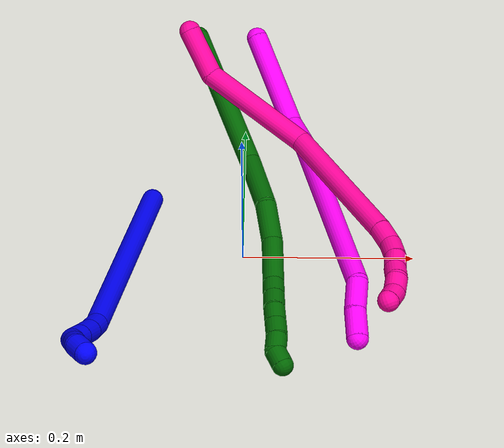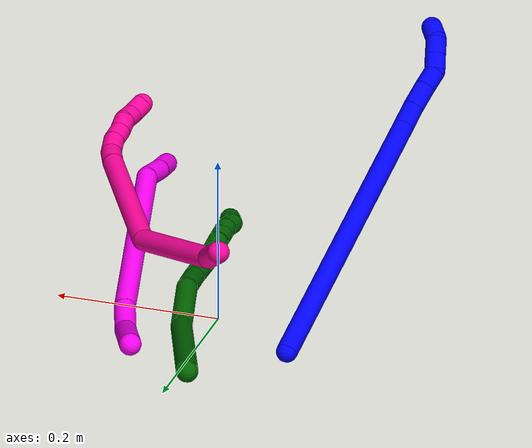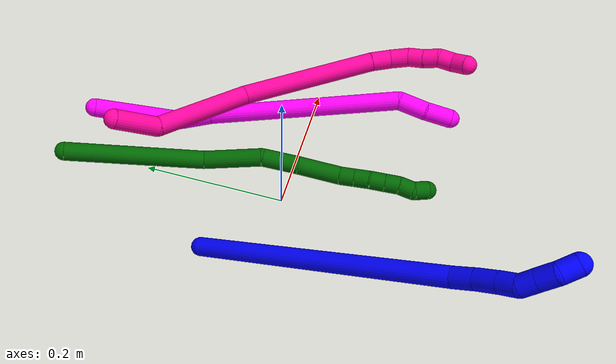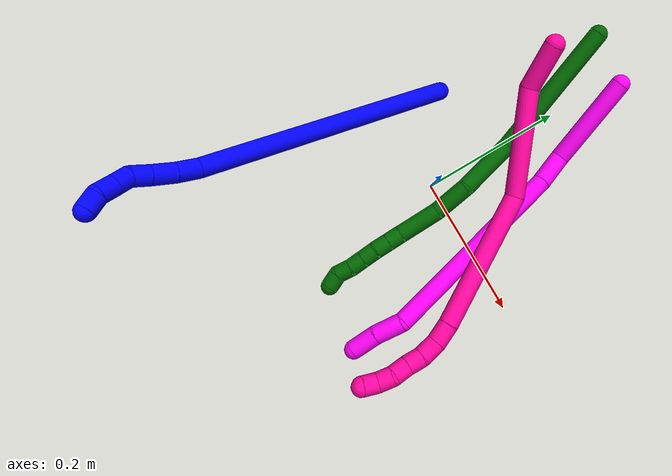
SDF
<sdf version="1.7">
 <world name="default">
  <model name="1">
   <static>0</static>
   <link name="1">
    <collision name="collision-cylinder-e_1_1_4">
     <pose>-0.001819 -0.042072 0.172717 0.238934 -0.010231 -0.001228</pose>
     <geometry><cylinder><radius>0.0125</radius><length>0.355554</length></cylinder></geometry>
     <surface>
      <friction><ode><mu>1.16</mu><mu2>1.16</mu2><slip1>0</slip1><slip2>0</slip2></ode></friction>
      <contact><ode><kp>1e+06</kp><kd>1</kd><max_vel>0</max_vel><min_depth>0.001</min_depth></ode></contact>
     </surface>
    </collision>
    <visual name="visual-cylinder-e_1_1_4">
     <pose>-0.001819 -0.042072 0.172717 0.238934 -0.010231 -0.001228</pose>
     <geometry><cylinder><radius>0.0125</radius><length>0.355554</length></cylinder></geometry>
     <material><ambient>0 0 1 1</ambient></material>
    </visual>
    <collision name="collision-cylinder-e_2_4_5">
     <pose>-0.00642 -0.086586 0.35948 0.172169 -0.192775 -0.016687</pose>
     <geometry><cylinder><radius>0.0125</radius><length>0.02905</length></cylinder></geometry>
     <surface>
      <friction><ode><mu>1.16</mu><mu2>1.16</mu2><slip1>0</slip1><slip2>0</slip2></ode></friction>
      <contact><ode><kp>1e+06</kp><kd>1</kd><max_vel>0</max_vel><min_depth>0.001</min_depth></ode></contact>
     </surface>
    </collision>
    <visual name="visual-cylinder-e_2_4_5">
     <pose>-0.00642 -0.086586 0.35948 0.172169 -0.192775 -0.016687</pose>
     <geometry><cylinder><radius>0.0125</radius><length>0.02905</length></cylinder></geometry>
     <material><ambient>0 0 1 1</ambient></material>
    </visual>
    <collision name="collision-cylinder-e_3_5_6">
     <pose>-0.013316 -0.091831 0.387499 0.197934 -0.280907 -0.028075</pose>
     <geometry><cylinder><radius>0.0125</radius><length>0.029668</length></cylinder></geometry>
     <surface>
      <friction><ode><mu>1.16</mu><mu2>1.16</mu2><slip1>0</slip1><slip2>0</slip2></ode></friction>
      <contact><ode><kp>1e+06</kp><kd>1</kd><max_vel>0</max_vel><min_depth>0.001</min_depth></ode></contact>
     </surface>
    </collision>
    <visual name="visual-cylinder-e_3_5_6">
     <pose>-0.013316 -0.091831 0.387499 0.197934 -0.280907 -0.028075</pose>
     <geometry><cylinder><radius>0.0125</radius><length>0.029668</length></cylinder></geometry>
     <material><ambient>0 0 1 1</ambient></material>
    </visual>
    <collision name="collision-cylinder-e_4_6_7">
     <pose>-0.020869 -0.097108 0.411978 0.23137 -0.308626 -0.036147</pose>
     <geometry><cylinder><radius>0.0125</radius><length>0.022655</length></cylinder></geometry>
     <surface>
      <friction><ode><mu>1.16</mu><mu2>1.16</mu2><slip1>0</slip1><slip2>0</slip2></ode></friction>
      <contact><ode><kp>1e+06</kp><kd>1</kd><max_vel>0</max_vel><min_depth>0.001</min_depth></ode></contact>
     </surface>
    </collision>
    <visual name="visual-cylinder-e_4_6_7">
     <pose>-0.020869 -0.097108 0.411978 0.23137 -0.308626 -0.036147</pose>
     <geometry><cylinder><radius>0.0125</radius><length>0.022655</length></cylinder></geometry>
     <material><ambient>0 0 1 1</ambient></material>
    </visual>
    <collision name="collision-cylinder-e_5_7_8">
     <pose>-0.024647 -0.09758 0.432679 -0.193993 -0.032439 0.003157</pose>
     <geometry><cylinder><radius>0.0125</radius><length>0.020794</length></cylinder></geometry>
     <surface>
      <friction><ode><mu>1.16</mu><mu2>1.16</mu2><slip1>0</slip1><slip2>0</slip2></ode></friction>
      <contact><ode><kp>1e+06</kp><kd>1</kd><max_vel>0</max_vel><min_depth>0.001</min_depth></ode></contact>
     </surface>
    </collision>
    <visual name="visual-cylinder-e_5_7_8">
     <pose>-0.024647 -0.09758 0.432679 -0.193993 -0.032439 0.003157</pose>
     <geometry><cylinder><radius>0.0125</radius><length>0.020794</length></cylinder></geometry>
     <material><ambient>0 0 1 1</ambient></material>
    </visual>
    <collision name="collision-cylinder-e_6_8_9">
     <pose>-0.025539 -0.093615 0.453472 -0.183072 -0.051428 0.004722</pose>
     <geometry><cylinder><radius>0.0125</radius><length>0.021581</length></cylinder></geometry>
     <surface>
      <friction><ode><mu>1.16</mu><mu2>1.16</mu2><slip1>0</slip1><slip2>0</slip2></ode></friction>
      <contact><ode><kp>1e+06</kp><kd>1</kd><max_vel>0</max_vel><min_depth>0.001</min_depth></ode></contact>
     </surface>
    </collision>
    <visual name="visual-cylinder-e_6_8_9">
     <pose>-0.025539 -0.093615 0.453472 -0.183072 -0.051428 0.004722</pose>
     <geometry><cylinder><radius>0.0125</radius><length>0.021581</length></cylinder></geometry>
     <material><ambient>0 0 1 1</ambient></material>
    </visual>
    <collision name="collision-cylinder-e_7_9_2">
     <pose>-0.021961 -0.089194 0.473233 -0.262079 0.41069 -0.054887</pose>
     <geometry><cylinder><radius>0.0125</radius><length>0.020698</length></cylinder></geometry>
     <surface>
      <friction><ode><mu>1.16</mu><mu2>1.16</mu2><slip1>0</slip1><slip2>0</slip2></ode></friction>
      <contact><ode><kp>1e+06</kp><kd>1</kd><max_vel>0</max_vel><min_depth>0.001</min_depth></ode></contact>
     </surface>
    </collision>
    <visual name="visual-cylinder-e_7_9_2">
     <pose>-0.021961 -0.089194 0.473233 -0.262079 0.41069 -0.054887</pose>
     <geometry><cylinder><radius>0.0125</radius><length>0.020698</length></cylinder></geometry>
     <material><ambient>0 0 1 1</ambient></material>
    </visual>
    <collision name="collision-sphere-2">
     <pose>-0.01783 -0.086736 0.482398 0 -0 0</pose>
     <geometry><sphere><radius>0.0125</radius></sphere></geometry>
     <surface>
      <friction><ode><mu>1.16</mu><mu2>1.16</mu2><slip1>0</slip1><slip2>0</slip2></ode></friction>
      <contact><ode><kp>1e+06</kp><kd>1</kd><max_vel>0</max_vel><min_depth>0.001</min_depth></ode></contact>
     </surface>
    </collision>
    <visual name="visual-sphere-2">
     <pose>-0.01783 -0.086736 0.482398 0 -0 0</pose>
     <geometry><sphere><radius>0.0125</radius></sphere></geometry>
     <material><ambient>0 0 1 1</ambient></material>
    </visual>
    <collision name="collision-sphere-9">
     <pose>-0.026093 -0.091653 0.464068 0 -0 0</pose>
     <geometry><sphere><radius>0.0125</radius></sphere></geometry>
     <surface>
      <friction><ode><mu>1.16</mu><mu2>1.16</mu2><slip1>0</slip1><slip2>0</slip2></ode></friction>
      <contact><ode><kp>1e+06</kp><kd>1</kd><max_vel>0</max_vel><min_depth>0.001</min_depth></ode></contact>
     </surface>
    </collision>
    <visual name="visual-sphere-9">
     <pose>-0.026093 -0.091653 0.464068 0 -0 0</pose>
     <geometry><sphere><radius>0.0125</radius></sphere></geometry>
     <material><ambient>0 0 1 1</ambient></material>
    </visual>
    <collision name="collision-sphere-4">
     <pose>-0.003638 -0.084143 0.345435 0 -0 0</pose>
     <geometry><sphere><radius>0.0125</radius></sphere></geometry>
     <surface>
      <friction><ode><mu>1.16</mu><mu2>1.16</mu2><slip1>0</slip1><slip2>0</slip2></ode></friction>
      <contact><ode><kp>1e+06</kp><kd>1</kd><max_vel>0</max_vel><min_depth>0.001</min_depth></ode></contact>
     </surface>
    </collision>
    <visual name="visual-sphere-4">
     <pose>-0.003638 -0.084143 0.345435 0 -0 0</pose>
     <geometry><sphere><radius>0.0125</radius></sphere></geometry>
     <material><ambient>0 0 1 1</ambient></material>
    </visual>
    <collision name="collision-sphere-1">
     <geometry><sphere><radius>0.0125</radius></sphere></geometry>
     <surface>
      <friction><ode><mu>1.16</mu><mu2>1.16</mu2><slip1>0</slip1><slip2>0</slip2></ode></friction>
      <contact><ode><kp>1e+06</kp><kd>1</kd><max_vel>0</max_vel><min_depth>0.001</min_depth></ode></contact>
     </surface>
    </collision>
    <visual name="visual-sphere-1">
     <geometry><sphere><radius>0.0125</radius></sphere></geometry>
     <material><ambient>0 0 1 1</ambient></material>
    </visual>
    <collision name="collision-sphere-8">
     <pose>-0.024984 -0.095576 0.442876 0 -0 0</pose>
     <geometry><sphere><radius>0.0125</radius></sphere></geometry>
     <surface>
      <friction><ode><mu>1.16</mu><mu2>1.16</mu2><slip1>0</slip1><slip2>0</slip2></ode></friction>
      <contact><ode><kp>1e+06</kp><kd>1</kd><max_vel>0</max_vel><min_depth>0.001</min_depth></ode></contact>
     </surface>
    </collision>
    <visual name="visual-sphere-8">
     <pose>-0.024984 -0.095576 0.442876 0 -0 0</pose>
     <geometry><sphere><radius>0.0125</radius></sphere></geometry>
     <material><ambient>0 0 1 1</ambient></material>
    </visual>
    <collision name="collision-sphere-5">
     <pose>-0.009203 -0.089028 0.373525 0 -0 0</pose>
     <geometry><sphere><radius>0.0125</radius></sphere></geometry>
     <surface>
      <friction><ode><mu>1.16</mu><mu2>1.16</mu2><slip1>0</slip1><slip2>0</slip2></ode></friction>
      <contact><ode><kp>1e+06</kp><kd>1</kd><max_vel>0</max_vel><min_depth>0.001</min_depth></ode></contact>
     </surface>
    </collision>
    <visual name="visual-sphere-5">
     <pose>-0.009203 -0.089028 0.373525 0 -0 0</pose>
     <geometry><sphere><radius>0.0125</radius></sphere></geometry>
     <material><ambient>0 0 1 1</ambient></material>
    </visual>
    <collision name="collision-sphere-6">
     <pose>-0.017428 -0.094633 0.401474 0 -0 0</pose>
     <geometry><sphere><radius>0.0125</radius></sphere></geometry>
     <surface>
      <friction><ode><mu>1.16</mu><mu2>1.16</mu2><slip1>0</slip1><slip2>0</slip2></ode></friction>
      <contact><ode><kp>1e+06</kp><kd>1</kd><max_vel>0</max_vel><min_depth>0.001</min_depth></ode></contact>
     </surface>
    </collision>
    <visual name="visual-sphere-6">
     <pose>-0.017428 -0.094633 0.401474 0 -0 0</pose>
     <geometry><sphere><radius>0.0125</radius></sphere></geometry>
     <material><ambient>0 0 1 1</ambient></material>
    </visual>
    <collision name="collision-sphere-7">
     <pose>-0.024309 -0.099583 0.422483 0 -0 0</pose>
     <geometry><sphere><radius>0.0125</radius></sphere></geometry>
     <surface>
      <friction><ode><mu>1.16</mu><mu2>1.16</mu2><slip1>0</slip1><slip2>0</slip2></ode></friction>
      <contact><ode><kp>1e+06</kp><kd>1</kd><max_vel>0</max_vel><min_depth>0.001</min_depth></ode></contact>
     </surface>
    </collision>
    <visual name="visual-sphere-7">
     <pose>-0.024309 -0.099583 0.422483 0 -0 0</pose>
     <geometry><sphere><radius>0.0125</radius></sphere></geometry>
     <material><ambient>0 0 1 1</ambient></material>
    </visual>
    <inertial>
     <pose>-0.006438 -0.056588 0.242523 0 -0 0</pose>
     <mass>0.5</mass>
     <inertia>
      <ixx>0.003766</ixx>
      <ixy>0</ixy>
      <ixz>0</ixz>
      <iyy>0.003654</iyy>
      <iyz>0</iyz>
      <izz>0.000968</izz>
     </inertia>
    </inertial>
   </link>
   <pose>-0.109059 0.079149 0.011457 0.741249 0.690955 -0.534343</pose>
  </model>
  <model name="6">
   <static>0</static>
   <link name="6">
    <collision name="collision-cylinder-e_1_1_4">
     <pose>0.048312 -0.072552 0.035409 1.11675 0.539267 0.341914</pose>
     <geometry><cylinder><radius>0.0125</radius><length>0.188166</length></cylinder></geometry>
     <surface>
      <friction><ode><mu>1.16</mu><mu2>1.16</mu2><slip1>0</slip1><slip2>0</slip2></ode></friction>
      <contact><ode><kp>1e+06</kp><kd>1</kd><max_vel>0</max_vel><min_depth>0.001</min_depth></ode></contact>
     </surface>
    </collision>
    <visual name="visual-cylinder-e_1_1_4">
     <pose>0.048312 -0.072552 0.035409 1.11675 0.539267 0.341914</pose>
     <geometry><cylinder><radius>0.0125</radius><length>0.188166</length></cylinder></geometry>
     <material><ambient>0 0.392157 0.003922 1</ambient></material>
    </visual>
    <collision name="collision-cylinder-e_2_4_5">
     <pose>0.123617 -0.165837 0.092542 0.762059 0.732166 0.304775</pose>
     <geometry><cylinder><radius>0.0125</radius><length>0.080757</length></cylinder></geometry>
     <surface>
      <friction><ode><mu>1.16</mu><mu2>1.16</mu2><slip1>0</slip1><slip2>0</slip2></ode></friction>
      <contact><ode><kp>1e+06</kp><kd>1</kd><max_vel>0</max_vel><min_depth>0.001</min_depth></ode></contact>
     </surface>
    </collision>
    <visual name="visual-cylinder-e_2_4_5">
     <pose>0.123617 -0.165837 0.092542 0.762059 0.732166 0.304775</pose>
     <geometry><cylinder><radius>0.0125</radius><length>0.080757</length></cylinder></geometry>
     <material><ambient>0 0.392157 0.003922 1</ambient></material>
    </visual>
    <collision name="collision-cylinder-e_3_5_6">
     <pose>0.161131 -0.20515 0.127869 0.938858 0.428593 0.219903</pose>
     <geometry><cylinder><radius>0.0125</radius><length>0.050633</length></cylinder></geometry>
     <surface>
      <friction><ode><mu>1.16</mu><mu2>1.16</mu2><slip1>0</slip1><slip2>0</slip2></ode></friction>
      <contact><ode><kp>1e+06</kp><kd>1</kd><max_vel>0</max_vel><min_depth>0.001</min_depth></ode></contact>
     </surface>
    </collision>
    <visual name="visual-cylinder-e_3_5_6">
     <pose>0.161131 -0.20515 0.127869 0.938858 0.428593 0.219903</pose>
     <geometry><cylinder><radius>0.0125</radius><length>0.050633</length></cylinder></geometry>
     <material><ambient>0 0.392157 0.003922 1</ambient></material>
    </visual>
    <collision name="collision-cylinder-e_4_6_7">
     <pose>0.184509 -0.241433 0.16146 0.724815 0.448755 0.172631</pose>
     <geometry><cylinder><radius>0.0125</radius><length>0.059272</length></cylinder></geometry>
     <surface>
      <friction><ode><mu>1.16</mu><mu2>1.16</mu2><slip1>0</slip1><slip2>0</slip2></ode></friction>
      <contact><ode><kp>1e+06</kp><kd>1</kd><max_vel>0</max_vel><min_depth>0.001</min_depth></ode></contact>
     </surface>
    </collision>
    <visual name="visual-cylinder-e_4_6_7">
     <pose>0.184509 -0.241433 0.16146 0.724815 0.448755 0.172631</pose>
     <geometry><cylinder><radius>0.0125</radius><length>0.059272</length></cylinder></geometry>
     <material><ambient>0 0.392157 0.003922 1</ambient></material>
    </visual>
    <collision name="collision-cylinder-e_5_7_8">
     <pose>0.202884 -0.264056 0.188616 0.60166 0.565611 0.179825</pose>
     <geometry><cylinder><radius>0.0125</radius><length>0.02059</length></cylinder></geometry>
     <surface>
      <friction><ode><mu>1.16</mu><mu2>1.16</mu2><slip1>0</slip1><slip2>0</slip2></ode></friction>
      <contact><ode><kp>1e+06</kp><kd>1</kd><max_vel>0</max_vel><min_depth>0.001</min_depth></ode></contact>
     </surface>
    </collision>
    <visual name="visual-cylinder-e_5_7_8">
     <pose>0.202884 -0.264056 0.188616 0.60166 0.565611 0.179825</pose>
     <geometry><cylinder><radius>0.0125</radius><length>0.02059</length></cylinder></geometry>
     <material><ambient>0 0.392157 0.003922 1</ambient></material>
    </visual>
    <collision name="collision-cylinder-e_6_8_9">
     <pose>0.213898 -0.27378 0.202984 0.588197 0.565649 0.175591</pose>
     <geometry><cylinder><radius>0.0125</radius><length>0.02051</length></cylinder></geometry>
     <surface>
      <friction><ode><mu>1.16</mu><mu2>1.16</mu2><slip1>0</slip1><slip2>0</slip2></ode></friction>
      <contact><ode><kp>1e+06</kp><kd>1</kd><max_vel>0</max_vel><min_depth>0.001</min_depth></ode></contact>
     </surface>
    </collision>
    <visual name="visual-cylinder-e_6_8_9">
     <pose>0.213898 -0.27378 0.202984 0.588197 0.565649 0.175591</pose>
     <geometry><cylinder><radius>0.0125</radius><length>0.02051</length></cylinder></geometry>
     <material><ambient>0 0.392157 0.003922 1</ambient></material>
    </visual>
    <collision name="collision-cylinder-e_7_9_10">
     <pose>0.224194 -0.284634 0.216593 0.75682 0.498689 0.20179</pose>
     <geometry><cylinder><radius>0.0125</radius><length>0.020068</length></cylinder></geometry>
     <surface>
      <friction><ode><mu>1.16</mu><mu2>1.16</mu2><slip1>0</slip1><slip2>0</slip2></ode></friction>
      <contact><ode><kp>1e+06</kp><kd>1</kd><max_vel>0</max_vel><min_depth>0.001</min_depth></ode></contact>
     </surface>
    </collision>
    <visual name="visual-cylinder-e_7_9_10">
     <pose>0.224194 -0.284634 0.216593 0.75682 0.498689 0.20179</pose>
     <geometry><cylinder><radius>0.0125</radius><length>0.020068</length></cylinder></geometry>
     <material><ambient>0 0.392157 0.003922 1</ambient></material>
    </visual>
    <collision name="collision-cylinder-e_8_10_11">
     <pose>0.233861 -0.296609 0.229419 0.745365 0.508486 0.202496</pose>
     <geometry><cylinder><radius>0.0125</radius><length>0.020001</length></cylinder></geometry>
     <surface>
      <friction><ode><mu>1.16</mu><mu2>1.16</mu2><slip1>0</slip1><slip2>0</slip2></ode></friction>
      <contact><ode><kp>1e+06</kp><kd>1</kd><max_vel>0</max_vel><min_depth>0.001</min_depth></ode></contact>
     </surface>
    </collision>
    <visual name="visual-cylinder-e_8_10_11">
     <pose>0.233861 -0.296609 0.229419 0.745365 0.508486 0.202496</pose>
     <geometry><cylinder><radius>0.0125</radius><length>0.020001</length></cylinder></geometry>
     <material><ambient>0 0.392157 0.003922 1</ambient></material>
    </visual>
    <collision name="collision-cylinder-e_9_11_12">
     <pose>0.24184 -0.308654 0.24311 0.699562 0.316201 0.116184</pose>
     <geometry><cylinder><radius>0.0125</radius><length>0.020001</length></cylinder></geometry>
     <surface>
      <friction><ode><mu>1.16</mu><mu2>1.16</mu2><slip1>0</slip1><slip2>0</slip2></ode></friction>
      <contact><ode><kp>1e+06</kp><kd>1</kd><max_vel>0</max_vel><min_depth>0.001</min_depth></ode></contact>
     </surface>
    </collision>
    <visual name="visual-cylinder-e_9_11_12">
     <pose>0.24184 -0.308654 0.24311 0.699562 0.316201 0.116184</pose>
     <geometry><cylinder><radius>0.0125</radius><length>0.020001</length></cylinder></geometry>
     <material><ambient>0 0.392157 0.003922 1</ambient></material>
    </visual>
    <collision name="collision-cylinder-e_10_12_2">
     <pose>0.250813 -0.322237 0.253534 1.17125 0.626437 0.423187</pose>
     <geometry><cylinder><radius>0.0125</radius><length>0.020001</length></cylinder></geometry>
     <surface>
      <friction><ode><mu>1.16</mu><mu2>1.16</mu2><slip1>0</slip1><slip2>0</slip2></ode></friction>
      <contact><ode><kp>1e+06</kp><kd>1</kd><max_vel>0</max_vel><min_depth>0.001</min_depth></ode></contact>
     </surface>
    </collision>
    <visual name="visual-cylinder-e_10_12_2">
     <pose>0.250813 -0.322237 0.253534 1.17125 0.626437 0.423187</pose>
     <geometry><cylinder><radius>0.0125</radius><length>0.020001</length></cylinder></geometry>
     <material><ambient>0 0.392157 0.003922 1</ambient></material>
    </visual>
    <collision name="collision-sphere-2">
     <pose>0.256675 -0.329701 0.256686 0 -0 0</pose>
     <geometry><sphere><radius>0.0125</radius></sphere></geometry>
     <surface>
      <friction><ode><mu>1.16</mu><mu2>1.16</mu2><slip1>0</slip1><slip2>0</slip2></ode></friction>
      <contact><ode><kp>1e+06</kp><kd>1</kd><max_vel>0</max_vel><min_depth>0.001</min_depth></ode></contact>
     </surface>
    </collision>
    <visual name="visual-sphere-2">
     <pose>0.256675 -0.329701 0.256686 0 -0 0</pose>
     <geometry><sphere><radius>0.0125</radius></sphere></geometry>
     <material><ambient>0 0.392157 0.003922 1</ambient></material>
    </visual>
    <collision name="collision-sphere-12">
     <pose>0.24495 -0.314774 0.250383 0 -0 0</pose>
     <geometry><sphere><radius>0.0125</radius></sphere></geometry>
     <surface>
      <friction><ode><mu>1.16</mu><mu2>1.16</mu2><slip1>0</slip1><slip2>0</slip2></ode></friction>
      <contact><ode><kp>1e+06</kp><kd>1</kd><max_vel>0</max_vel><min_depth>0.001</min_depth></ode></contact>
     </surface>
    </collision>
    <visual name="visual-sphere-12">
     <pose>0.24495 -0.314774 0.250383 0 -0 0</pose>
     <geometry><sphere><radius>0.0125</radius></sphere></geometry>
     <material><ambient>0 0.392157 0.003922 1</ambient></material>
    </visual>
    <collision name="collision-sphere-11">
     <pose>0.23873 -0.302534 0.235838 0 -0 0</pose>
     <geometry><sphere><radius>0.0125</radius></sphere></geometry>
     <surface>
      <friction><ode><mu>1.16</mu><mu2>1.16</mu2><slip1>0</slip1><slip2>0</slip2></ode></friction>
      <contact><ode><kp>1e+06</kp><kd>1</kd><max_vel>0</max_vel><min_depth>0.001</min_depth></ode></contact>
     </surface>
    </collision>
    <visual name="visual-sphere-11">
     <pose>0.23873 -0.302534 0.235838 0 -0 0</pose>
     <geometry><sphere><radius>0.0125</radius></sphere></geometry>
     <material><ambient>0 0.392157 0.003922 1</ambient></material>
    </visual>
    <collision name="collision-sphere-10">
     <pose>0.228993 -0.290684 0.223 0 -0 0</pose>
     <geometry><sphere><radius>0.0125</radius></sphere></geometry>
     <surface>
      <friction><ode><mu>1.16</mu><mu2>1.16</mu2><slip1>0</slip1><slip2>0</slip2></ode></friction>
      <contact><ode><kp>1e+06</kp><kd>1</kd><max_vel>0</max_vel><min_depth>0.001</min_depth></ode></contact>
     </surface>
    </collision>
    <visual name="visual-sphere-10">
     <pose>0.228993 -0.290684 0.223 0 -0 0</pose>
     <geometry><sphere><radius>0.0125</radius></sphere></geometry>
     <material><ambient>0 0.392157 0.003922 1</ambient></material>
    </visual>
    <collision name="collision-sphere-9">
     <pose>0.219395 -0.278584 0.210187 0 -0 0</pose>
     <geometry><sphere><radius>0.0125</radius></sphere></geometry>
     <surface>
      <friction><ode><mu>1.16</mu><mu2>1.16</mu2><slip1>0</slip1><slip2>0</slip2></ode></friction>
      <contact><ode><kp>1e+06</kp><kd>1</kd><max_vel>0</max_vel><min_depth>0.001</min_depth></ode></contact>
     </surface>
    </collision>
    <visual name="visual-sphere-9">
     <pose>0.219395 -0.278584 0.210187 0 -0 0</pose>
     <geometry><sphere><radius>0.0125</radius></sphere></geometry>
     <material><ambient>0 0.392157 0.003922 1</ambient></material>
    </visual>
    <collision name="collision-sphere-4">
     <pose>0.096624 -0.145103 0.070817 0 -0 0</pose>
     <geometry><sphere><radius>0.0125</radius></sphere></geometry>
     <surface>
      <friction><ode><mu>1.16</mu><mu2>1.16</mu2><slip1>0</slip1><slip2>0</slip2></ode></friction>
      <contact><ode><kp>1e+06</kp><kd>1</kd><max_vel>0</max_vel><min_depth>0.001</min_depth></ode></contact>
     </surface>
    </collision>
    <visual name="visual-sphere-4">
     <pose>0.096624 -0.145103 0.070817 0 -0 0</pose>
     <geometry><sphere><radius>0.0125</radius></sphere></geometry>
     <material><ambient>0 0.392157 0.003922 1</ambient></material>
    </visual>
    <collision name="collision-sphere-1">
     <geometry><sphere><radius>0.0125</radius></sphere></geometry>
     <surface>
      <friction><ode><mu>1.16</mu><mu2>1.16</mu2><slip1>0</slip1><slip2>0</slip2></ode></friction>
      <contact><ode><kp>1e+06</kp><kd>1</kd><max_vel>0</max_vel><min_depth>0.001</min_depth></ode></contact>
     </surface>
    </collision>
    <visual name="visual-sphere-1">
     <geometry><sphere><radius>0.0125</radius></sphere></geometry>
     <material><ambient>0 0.392157 0.003922 1</ambient></material>
    </visual>
    <collision name="collision-sphere-8">
     <pose>0.208402 -0.268976 0.195781 0 -0 0</pose>
     <geometry><sphere><radius>0.0125</radius></sphere></geometry>
     <surface>
      <friction><ode><mu>1.16</mu><mu2>1.16</mu2><slip1>0</slip1><slip2>0</slip2></ode></friction>
      <contact><ode><kp>1e+06</kp><kd>1</kd><max_vel>0</max_vel><min_depth>0.001</min_depth></ode></contact>
     </surface>
    </collision>
    <visual name="visual-sphere-8">
     <pose>0.208402 -0.268976 0.195781 0 -0 0</pose>
     <geometry><sphere><radius>0.0125</radius></sphere></geometry>
     <material><ambient>0 0.392157 0.003922 1</ambient></material>
    </visual>
    <collision name="collision-sphere-5">
     <pose>0.150609 -0.18657 0.114267 0 -0 0</pose>
     <geometry><sphere><radius>0.0125</radius></sphere></geometry>
     <surface>
      <friction><ode><mu>1.16</mu><mu2>1.16</mu2><slip1>0</slip1><slip2>0</slip2></ode></friction>
      <contact><ode><kp>1e+06</kp><kd>1</kd><max_vel>0</max_vel><min_depth>0.001</min_depth></ode></contact>
     </surface>
    </collision>
    <visual name="visual-sphere-5">
     <pose>0.150609 -0.18657 0.114267 0 -0 0</pose>
     <geometry><sphere><radius>0.0125</radius></sphere></geometry>
     <material><ambient>0 0.392157 0.003922 1</ambient></material>
    </visual>
    <collision name="collision-sphere-6">
     <pose>0.171652 -0.22373 0.141471 0 -0 0</pose>
     <geometry><sphere><radius>0.0125</radius></sphere></geometry>
     <surface>
      <friction><ode><mu>1.16</mu><mu2>1.16</mu2><slip1>0</slip1><slip2>0</slip2></ode></friction>
      <contact><ode><kp>1e+06</kp><kd>1</kd><max_vel>0</max_vel><min_depth>0.001</min_depth></ode></contact>
     </surface>
    </collision>
    <visual name="visual-sphere-6">
     <pose>0.171652 -0.22373 0.141471 0 -0 0</pose>
     <geometry><sphere><radius>0.0125</radius></sphere></geometry>
     <material><ambient>0 0.392157 0.003922 1</ambient></material>
    </visual>
    <collision name="collision-sphere-7">
     <pose>0.197367 -0.259136 0.18145 0 -0 0</pose>
     <geometry><sphere><radius>0.0125</radius></sphere></geometry>
     <surface>
      <friction><ode><mu>1.16</mu><mu2>1.16</mu2><slip1>0</slip1><slip2>0</slip2></ode></friction>
      <contact><ode><kp>1e+06</kp><kd>1</kd><max_vel>0</max_vel><min_depth>0.001</min_depth></ode></contact>
     </surface>
    </collision>
    <visual name="visual-sphere-7">
     <pose>0.197367 -0.259136 0.18145 0 -0 0</pose>
     <geometry><sphere><radius>0.0125</radius></sphere></geometry>
     <material><ambient>0 0.392157 0.003922 1</ambient></material>
    </visual>
    <inertial>
     <pose>0.131526 -0.174114 0.114192 0 -0 0</pose>
     <mass>0.5</mass>
     <inertia>
      <ixx>0.000724</ixx>
      <ixy>0</ixy>
      <ixz>0</ixz>
      <iyy>0.000543</iyy>
      <iyz>0</iyz>
      <izz>0.000166</izz>
     </inertia>
    </inertial>
   </link>
   <pose>-0.05841 0.286217 0.078039 1.33532 -0.682329 -0.619314</pose>
  </model>
  <model name="10">
   <static>0</static>
   <link name="10">
    <collision name="collision-cylinder-e_1_1_4">
     <pose>-0.004536 -0.05368 -0.02765 2.04645 -0.074975 -0.12286</pose>
     <geometry><cylinder><radius>0.0125</radius><length>0.121105</length></cylinder></geometry>
     <surface>
      <friction><ode><mu>1.16</mu><mu2>1.16</mu2><slip1>0</slip1><slip2>0</slip2></ode></friction>
      <contact><ode><kp>1e+06</kp><kd>1</kd><max_vel>0</max_vel><min_depth>0.001</min_depth></ode></contact>
     </surface>
    </collision>
    <visual name="visual-cylinder-e_1_1_4">
     <pose>-0.004536 -0.05368 -0.02765 2.04645 -0.074975 -0.12286</pose>
     <geometry><cylinder><radius>0.0125</radius><length>0.121105</length></cylinder></geometry>
     <material><ambient>1 0 0.964706 1</ambient></material>
    </visual>
    <collision name="collision-cylinder-e_2_4_5">
     <pose>-0.005223 -0.129 -0.055724 1.59036 0.17596 0.179418</pose>
     <geometry><cylinder><radius>0.0125</radius><length>0.04397</length></cylinder></geometry>
     <surface>
      <friction><ode><mu>1.16</mu><mu2>1.16</mu2><slip1>0</slip1><slip2>0</slip2></ode></friction>
      <contact><ode><kp>1e+06</kp><kd>1</kd><max_vel>0</max_vel><min_depth>0.001</min_depth></ode></contact>
     </surface>
    </collision>
    <visual name="visual-cylinder-e_2_4_5">
     <pose>-0.005223 -0.129 -0.055724 1.59036 0.17596 0.179418</pose>
     <geometry><cylinder><radius>0.0125</radius><length>0.04397</length></cylinder></geometry>
     <material><ambient>1 0 0.964706 1</ambient></material>
    </visual>
    <collision name="collision-cylinder-e_3_5_6">
     <pose>0.007709 -0.281212 -0.051118 1.5323 0.069407 0.066787</pose>
     <geometry><cylinder><radius>0.0125</radius><length>0.261966</length></cylinder></geometry>
     <surface>
      <friction><ode><mu>1.16</mu><mu2>1.16</mu2><slip1>0</slip1><slip2>0</slip2></ode></friction>
      <contact><ode><kp>1e+06</kp><kd>1</kd><max_vel>0</max_vel><min_depth>0.001</min_depth></ode></contact>
     </surface>
    </collision>
    <visual name="visual-cylinder-e_3_5_6">
     <pose>0.007709 -0.281212 -0.051118 1.5323 0.069407 0.066787</pose>
     <geometry><cylinder><radius>0.0125</radius><length>0.261966</length></cylinder></geometry>
     <material><ambient>1 0 0.964706 1</ambient></material>
    </visual>
    <collision name="collision-cylinder-e_4_6_7">
     <pose>0.009994 -0.42924 -0.047878 1.67289 -0.369638 -0.408398</pose>
     <geometry><cylinder><radius>0.0125</radius><length>0.037639</length></cylinder></geometry>
     <surface>
      <friction><ode><mu>1.16</mu><mu2>1.16</mu2><slip1>0</slip1><slip2>0</slip2></ode></friction>
      <contact><ode><kp>1e+06</kp><kd>1</kd><max_vel>0</max_vel><min_depth>0.001</min_depth></ode></contact>
     </surface>
    </collision>
    <visual name="visual-cylinder-e_4_6_7">
     <pose>0.009994 -0.42924 -0.047878 1.67289 -0.369638 -0.408398</pose>
     <geometry><cylinder><radius>0.0125</radius><length>0.037639</length></cylinder></geometry>
     <material><ambient>1 0 0.964706 1</ambient></material>
    </visual>
    <collision name="collision-cylinder-e_5_7_2">
     <pose>-0.001474 -0.463377 -0.053109 1.77435 -0.267566 -0.327452</pose>
     <geometry><cylinder><radius>0.0125</radius><length>0.035321</length></cylinder></geometry>
     <surface>
      <friction><ode><mu>1.16</mu><mu2>1.16</mu2><slip1>0</slip1><slip2>0</slip2></ode></friction>
      <contact><ode><kp>1e+06</kp><kd>1</kd><max_vel>0</max_vel><min_depth>0.001</min_depth></ode></contact>
     </surface>
    </collision>
    <visual name="visual-cylinder-e_5_7_2">
     <pose>-0.001474 -0.463377 -0.053109 1.77435 -0.267566 -0.327452</pose>
     <geometry><cylinder><radius>0.0125</radius><length>0.035321</length></cylinder></geometry>
     <material><ambient>1 0 0.964706 1</ambient></material>
    </visual>
    <collision name="collision-sphere-2">
     <pose>-0.006143 -0.480057 -0.056552 0 -0 0</pose>
     <geometry><sphere><radius>0.0125</radius></sphere></geometry>
     <surface>
      <friction><ode><mu>1.16</mu><mu2>1.16</mu2><slip1>0</slip1><slip2>0</slip2></ode></friction>
      <contact><ode><kp>1e+06</kp><kd>1</kd><max_vel>0</max_vel><min_depth>0.001</min_depth></ode></contact>
     </surface>
    </collision>
    <visual name="visual-sphere-2">
     <pose>-0.006143 -0.480057 -0.056552 0 -0 0</pose>
     <geometry><sphere><radius>0.0125</radius></sphere></geometry>
     <material><ambient>1 0 0.964706 1</ambient></material>
    </visual>
    <collision name="collision-sphere-7">
     <pose>0.003195 -0.446697 -0.049666 0 -0 0</pose>
     <geometry><sphere><radius>0.0125</radius></sphere></geometry>
     <surface>
      <friction><ode><mu>1.16</mu><mu2>1.16</mu2><slip1>0</slip1><slip2>0</slip2></ode></friction>
      <contact><ode><kp>1e+06</kp><kd>1</kd><max_vel>0</max_vel><min_depth>0.001</min_depth></ode></contact>
     </surface>
    </collision>
    <visual name="visual-sphere-7">
     <pose>0.003195 -0.446697 -0.049666 0 -0 0</pose>
     <geometry><sphere><radius>0.0125</radius></sphere></geometry>
     <material><ambient>1 0 0.964706 1</ambient></material>
    </visual>
    <collision name="collision-sphere-6">
     <pose>0.016793 -0.411783 -0.046089 0 -0 0</pose>
     <geometry><sphere><radius>0.0125</radius></sphere></geometry>
     <surface>
      <friction><ode><mu>1.16</mu><mu2>1.16</mu2><slip1>0</slip1><slip2>0</slip2></ode></friction>
      <contact><ode><kp>1e+06</kp><kd>1</kd><max_vel>0</max_vel><min_depth>0.001</min_depth></ode></contact>
     </surface>
    </collision>
    <visual name="visual-sphere-6">
     <pose>0.016793 -0.411783 -0.046089 0 -0 0</pose>
     <geometry><sphere><radius>0.0125</radius></sphere></geometry>
     <material><ambient>1 0 0.964706 1</ambient></material>
    </visual>
    <collision name="collision-sphere-5">
     <pose>-0.001374 -0.150642 -0.056148 0 -0 0</pose>
     <geometry><sphere><radius>0.0125</radius></sphere></geometry>
     <surface>
      <friction><ode><mu>1.16</mu><mu2>1.16</mu2><slip1>0</slip1><slip2>0</slip2></ode></friction>
      <contact><ode><kp>1e+06</kp><kd>1</kd><max_vel>0</max_vel><min_depth>0.001</min_depth></ode></contact>
     </surface>
    </collision>
    <visual name="visual-sphere-5">
     <pose>-0.001374 -0.150642 -0.056148 0 -0 0</pose>
     <geometry><sphere><radius>0.0125</radius></sphere></geometry>
     <material><ambient>1 0 0.964706 1</ambient></material>
    </visual>
    <collision name="collision-sphere-1">
     <geometry><sphere><radius>0.0125</radius></sphere></geometry>
     <surface>
      <friction><ode><mu>1.16</mu><mu2>1.16</mu2><slip1>0</slip1><slip2>0</slip2></ode></friction>
      <contact><ode><kp>1e+06</kp><kd>1</kd><max_vel>0</max_vel><min_depth>0.001</min_depth></ode></contact>
     </surface>
    </collision>
    <visual name="visual-sphere-1">
     <geometry><sphere><radius>0.0125</radius></sphere></geometry>
     <material><ambient>1 0 0.964706 1</ambient></material>
    </visual>
    <collision name="collision-sphere-4">
     <pose>-0.009071 -0.107359 -0.055301 0 -0 0</pose>
     <geometry><sphere><radius>0.0125</radius></sphere></geometry>
     <surface>
      <friction><ode><mu>1.16</mu><mu2>1.16</mu2><slip1>0</slip1><slip2>0</slip2></ode></friction>
      <contact><ode><kp>1e+06</kp><kd>1</kd><max_vel>0</max_vel><min_depth>0.001</min_depth></ode></contact>
     </surface>
    </collision>
    <visual name="visual-sphere-4">
     <pose>-0.009071 -0.107359 -0.055301 0 -0 0</pose>
     <geometry><sphere><radius>0.0125</radius></sphere></geometry>
     <material><ambient>1 0 0.964706 1</ambient></material>
    </visual>
    <inertial>
     <pose>0.00313 -0.236728 -0.045736 0 -0 0</pose>
     <mass>0.5</mass>
     <inertia><ixx>0.00175</ixx><ixy>0</ixy><ixz>0</ixz><iyy>3.9e-05</iyy><iyz>0</iyz><izz>0.001562</izz></inertia>
    </inertial>
   </link>
   <pose>0.013363 0.270825 0.092936 -0.13164 -0.560823 0.264159</pose>
  </model>
  <model name="18">
   <static>0</static>
   <link name="18">
    <collision name="collision-cylinder-e_1_1_4">
     <pose>0.002581 0.001625 -0.028839 -3.08531 0.089117 -2.01532</pose>
     <geometry><cylinder><radius>0.0125</radius><length>0.057999</length></cylinder></geometry>
     <surface>
      <friction><ode><mu>1.16</mu><mu2>1.16</mu2><slip1>0</slip1><slip2>0</slip2></ode></friction>
      <contact><ode><kp>1e+06</kp><kd>1</kd><max_vel>0</max_vel><min_depth>0.001</min_depth></ode></contact>
     </surface>
    </collision>
    <visual name="visual-cylinder-e_1_1_4">
     <pose>0.002581 0.001625 -0.028839 -3.08531 0.089117 -2.01532</pose>
     <geometry><cylinder><radius>0.0125</radius><length>0.057999</length></cylinder></geometry>
     <material><ambient>1 0.007843 0.615686 1</ambient></material>
    </visual>
    <collision name="collision-cylinder-e_2_4_5">
     <pose>0.041122 0.011278 -0.113963 -2.99992 0.563968 -2.66119</pose>
     <geometry><cylinder><radius>0.0125</radius><length>0.134546</length></cylinder></geometry>
     <surface>
      <friction><ode><mu>1.16</mu><mu2>1.16</mu2><slip1>0</slip1><slip2>0</slip2></ode></friction>
      <contact><ode><kp>1e+06</kp><kd>1</kd><max_vel>0</max_vel><min_depth>0.001</min_depth></ode></contact>
     </surface>
    </collision>
    <visual name="visual-cylinder-e_2_4_5">
     <pose>0.041122 0.011278 -0.113963 -2.99992 0.563968 -2.66119</pose>
     <geometry><cylinder><radius>0.0125</radius><length>0.134546</length></cylinder></geometry>
     <material><ambient>1 0.007843 0.615686 1</ambient></material>
    </visual>
    <collision name="collision-cylinder-e_3_5_6">
     <pose>0.12147 -0.014255 -0.238561 2.68495 0.527963 1.72137</pose>
     <geometry><cylinder><radius>0.0125</radius><length>0.176218</length></cylinder></geometry>
     <surface>
      <friction><ode><mu>1.16</mu><mu2>1.16</mu2><slip1>0</slip1><slip2>0</slip2></ode></friction>
      <contact><ode><kp>1e+06</kp><kd>1</kd><max_vel>0</max_vel><min_depth>0.001</min_depth></ode></contact>
     </surface>
    </collision>
    <visual name="visual-cylinder-e_3_5_6">
     <pose>0.12147 -0.014255 -0.238561 2.68495 0.527963 1.72137</pose>
     <geometry><cylinder><radius>0.0125</radius><length>0.176218</length></cylinder></geometry>
     <material><ambient>1 0.007843 0.615686 1</ambient></material>
    </visual>
    <collision name="collision-cylinder-e_4_6_7">
     <pose>0.171138 -0.053353 -0.317545 2.6629 0.413887 1.42097</pose>
     <geometry><cylinder><radius>0.0125</radius><length>0.026262</length></cylinder></geometry>
     <surface>
      <friction><ode><mu>1.16</mu><mu2>1.16</mu2><slip1>0</slip1><slip2>0</slip2></ode></friction>
      <contact><ode><kp>1e+06</kp><kd>1</kd><max_vel>0</max_vel><min_depth>0.001</min_depth></ode></contact>
     </surface>
    </collision>
    <visual name="visual-cylinder-e_4_6_7">
     <pose>0.171138 -0.053353 -0.317545 2.6629 0.413887 1.42097</pose>
     <geometry><cylinder><radius>0.0125</radius><length>0.026262</length></cylinder></geometry>
     <material><ambient>1 0.007843 0.615686 1</ambient></material>
    </visual>
    <collision name="collision-cylinder-e_5_7_8">
     <pose>0.180345 -0.067001 -0.336501 2.36682 0.326518 0.767445</pose>
     <geometry><cylinder><radius>0.0125</radius><length>0.024482</length></cylinder></geometry>
     <surface>
      <friction><ode><mu>1.16</mu><mu2>1.16</mu2><slip1>0</slip1><slip2>0</slip2></ode></friction>
      <contact><ode><kp>1e+06</kp><kd>1</kd><max_vel>0</max_vel><min_depth>0.001</min_depth></ode></contact>
     </surface>
    </collision>
    <visual name="visual-cylinder-e_5_7_8">
     <pose>0.180345 -0.067001 -0.336501 2.36682 0.326518 0.767445</pose>
     <geometry><cylinder><radius>0.0125</radius><length>0.024482</length></cylinder></geometry>
     <material><ambient>1 0.007843 0.615686 1</ambient></material>
    </visual>
    <collision name="collision-cylinder-e_6_8_9">
     <pose>0.185294 -0.082809 -0.351322 2.27481 0.100945 0.217476</pose>
     <geometry><cylinder><radius>0.0125</radius><length>0.020299</length></cylinder></geometry>
     <surface>
      <friction><ode><mu>1.16</mu><mu2>1.16</mu2><slip1>0</slip1><slip2>0</slip2></ode></friction>
      <contact><ode><kp>1e+06</kp><kd>1</kd><max_vel>0</max_vel><min_depth>0.001</min_depth></ode></contact>
     </surface>
    </collision>
    <visual name="visual-cylinder-e_6_8_9">
     <pose>0.185294 -0.082809 -0.351322 2.27481 0.100945 0.217476</pose>
     <geometry><cylinder><radius>0.0125</radius><length>0.020299</length></cylinder></geometry>
     <material><ambient>1 0.007843 0.615686 1</ambient></material>
    </visual>
    <collision name="collision-cylinder-e_7_9_10">
     <pose>0.188788 -0.09821 -0.363892 2.23518 0.247357 0.499838</pose>
     <geometry><cylinder><radius>0.0125</radius><length>0.020184</length></cylinder></geometry>
     <surface>
      <friction><ode><mu>1.16</mu><mu2>1.16</mu2><slip1>0</slip1><slip2>0</slip2></ode></friction>
      <contact><ode><kp>1e+06</kp><kd>1</kd><max_vel>0</max_vel><min_depth>0.001</min_depth></ode></contact>
     </surface>
    </collision>
    <visual name="visual-cylinder-e_7_9_10">
     <pose>0.188788 -0.09821 -0.363892 2.23518 0.247357 0.499838</pose>
     <geometry><cylinder><radius>0.0125</radius><length>0.020184</length></cylinder></geometry>
     <material><ambient>1 0.007843 0.615686 1</ambient></material>
    </visual>
    <collision name="collision-cylinder-e_8_10_11">
     <pose>0.190458 -0.11289 -0.377051 2.36684 -0.080147 -0.195918</pose>
     <geometry><cylinder><radius>0.0125</radius><length>0.02001</length></cylinder></geometry>
     <surface>
      <friction><ode><mu>1.16</mu><mu2>1.16</mu2><slip1>0</slip1><slip2>0</slip2></ode></friction>
      <contact><ode><kp>1e+06</kp><kd>1</kd><max_vel>0</max_vel><min_depth>0.001</min_depth></ode></contact>
     </surface>
    </collision>
    <visual name="visual-cylinder-e_8_10_11">
     <pose>0.190458 -0.11289 -0.377051 2.36684 -0.080147 -0.195918</pose>
     <geometry><cylinder><radius>0.0125</radius><length>0.02001</length></cylinder></geometry>
     <material><ambient>1 0.007843 0.615686 1</ambient></material>
    </visual>
    <collision name="collision-cylinder-e_9_11_2">
     <pose>0.189178 -0.129181 -0.387783 1.94011 -0.047851 -0.069816</pose>
     <geometry><cylinder><radius>0.0125</radius><length>0.02</length></cylinder></geometry>
     <surface>
      <friction><ode><mu>1.16</mu><mu2>1.16</mu2><slip1>0</slip1><slip2>0</slip2></ode></friction>
      <contact><ode><kp>1e+06</kp><kd>1</kd><max_vel>0</max_vel><min_depth>0.001</min_depth></ode></contact>
     </surface>
    </collision>
    <visual name="visual-cylinder-e_9_11_2">
     <pose>0.189178 -0.129181 -0.387783 1.94011 -0.047851 -0.069816</pose>
     <geometry><cylinder><radius>0.0125</radius><length>0.02</length></cylinder></geometry>
     <material><ambient>1 0.007843 0.615686 1</ambient></material>
    </visual>
    <collision name="collision-sphere-2">
     <pose>0.1887 -0.138497 -0.391389 0 -0 0</pose>
     <geometry><sphere><radius>0.0125</radius></sphere></geometry>
     <surface>
      <friction><ode><mu>1.16</mu><mu2>1.16</mu2><slip1>0</slip1><slip2>0</slip2></ode></friction>
      <contact><ode><kp>1e+06</kp><kd>1</kd><max_vel>0</max_vel><min_depth>0.001</min_depth></ode></contact>
     </surface>
    </collision>
    <visual name="visual-sphere-2">
     <pose>0.1887 -0.138497 -0.391389 0 -0 0</pose>
     <geometry><sphere><radius>0.0125</radius></sphere></geometry>
     <material><ambient>1 0.007843 0.615686 1</ambient></material>
    </visual>
    <collision name="collision-sphere-11">
     <pose>0.189657 -0.119866 -0.384178 0 -0 0</pose>
     <geometry><sphere><radius>0.0125</radius></sphere></geometry>
     <surface>
      <friction><ode><mu>1.16</mu><mu2>1.16</mu2><slip1>0</slip1><slip2>0</slip2></ode></friction>
      <contact><ode><kp>1e+06</kp><kd>1</kd><max_vel>0</max_vel><min_depth>0.001</min_depth></ode></contact>
     </surface>
    </collision>
    <visual name="visual-sphere-11">
     <pose>0.189657 -0.119866 -0.384178 0 -0 0</pose>
     <geometry><sphere><radius>0.0125</radius></sphere></geometry>
     <material><ambient>1 0.007843 0.615686 1</ambient></material>
    </visual>
    <collision name="collision-sphere-10">
     <pose>0.191259 -0.105913 -0.369925 0 -0 0</pose>
     <geometry><sphere><radius>0.0125</radius></sphere></geometry>
     <surface>
      <friction><ode><mu>1.16</mu><mu2>1.16</mu2><slip1>0</slip1><slip2>0</slip2></ode></friction>
      <contact><ode><kp>1e+06</kp><kd>1</kd><max_vel>0</max_vel><min_depth>0.001</min_depth></ode></contact>
     </surface>
    </collision>
    <visual name="visual-sphere-10">
     <pose>0.191259 -0.105913 -0.369925 0 -0 0</pose>
     <geometry><sphere><radius>0.0125</radius></sphere></geometry>
     <material><ambient>1 0.007843 0.615686 1</ambient></material>
    </visual>
    <collision name="collision-sphere-9">
     <pose>0.186317 -0.090506 -0.357858 0 -0 0</pose>
     <geometry><sphere><radius>0.0125</radius></sphere></geometry>
     <surface>
      <friction><ode><mu>1.16</mu><mu2>1.16</mu2><slip1>0</slip1><slip2>0</slip2></ode></friction>
      <contact><ode><kp>1e+06</kp><kd>1</kd><max_vel>0</max_vel><min_depth>0.001</min_depth></ode></contact>
     </surface>
    </collision>
    <visual name="visual-sphere-9">
     <pose>0.186317 -0.090506 -0.357858 0 -0 0</pose>
     <geometry><sphere><radius>0.0125</radius></sphere></geometry>
     <material><ambient>1 0.007843 0.615686 1</ambient></material>
    </visual>
    <collision name="collision-sphere-4">
     <pose>0.005162 0.00325 -0.057677 0 -0 0</pose>
     <geometry><sphere><radius>0.0125</radius></sphere></geometry>
     <surface>
      <friction><ode><mu>1.16</mu><mu2>1.16</mu2><slip1>0</slip1><slip2>0</slip2></ode></friction>
      <contact><ode><kp>1e+06</kp><kd>1</kd><max_vel>0</max_vel><min_depth>0.001</min_depth></ode></contact>
     </surface>
    </collision>
    <visual name="visual-sphere-4">
     <pose>0.005162 0.00325 -0.057677 0 -0 0</pose>
     <geometry><sphere><radius>0.0125</radius></sphere></geometry>
     <material><ambient>1 0.007843 0.615686 1</ambient></material>
    </visual>
    <collision name="collision-sphere-1">
     <geometry><sphere><radius>0.0125</radius></sphere></geometry>
     <surface>
      <friction><ode><mu>1.16</mu><mu2>1.16</mu2><slip1>0</slip1><slip2>0</slip2></ode></friction>
      <contact><ode><kp>1e+06</kp><kd>1</kd><max_vel>0</max_vel><min_depth>0.001</min_depth></ode></contact>
     </surface>
    </collision>
    <visual name="visual-sphere-1">
     <geometry><sphere><radius>0.0125</radius></sphere></geometry>
     <material><ambient>1 0.007843 0.615686 1</ambient></material>
    </visual>
    <collision name="collision-sphere-8">
     <pose>0.184271 -0.075112 -0.344786 0 -0 0</pose>
     <geometry><sphere><radius>0.0125</radius></sphere></geometry>
     <surface>
      <friction><ode><mu>1.16</mu><mu2>1.16</mu2><slip1>0</slip1><slip2>0</slip2></ode></friction>
      <contact><ode><kp>1e+06</kp><kd>1</kd><max_vel>0</max_vel><min_depth>0.001</min_depth></ode></contact>
     </surface>
    </collision>
    <visual name="visual-sphere-8">
     <pose>0.184271 -0.075112 -0.344786 0 -0 0</pose>
     <geometry><sphere><radius>0.0125</radius></sphere></geometry>
     <material><ambient>1 0.007843 0.615686 1</ambient></material>
    </visual>
    <collision name="collision-sphere-5">
     <pose>0.077083 0.019306 -0.170248 0 -0 0</pose>
     <geometry><sphere><radius>0.0125</radius></sphere></geometry>
     <surface>
      <friction><ode><mu>1.16</mu><mu2>1.16</mu2><slip1>0</slip1><slip2>0</slip2></ode></friction>
      <contact><ode><kp>1e+06</kp><kd>1</kd><max_vel>0</max_vel><min_depth>0.001</min_depth></ode></contact>
     </surface>
    </collision>
    <visual name="visual-sphere-5">
     <pose>0.077083 0.019306 -0.170248 0 -0 0</pose>
     <geometry><sphere><radius>0.0125</radius></sphere></geometry>
     <material><ambient>1 0.007843 0.615686 1</ambient></material>
    </visual>
    <collision name="collision-sphere-6">
     <pose>0.165857 -0.047815 -0.306874 0 -0 0</pose>
     <geometry><sphere><radius>0.0125</radius></sphere></geometry>
     <surface>
      <friction><ode><mu>1.16</mu><mu2>1.16</mu2><slip1>0</slip1><slip2>0</slip2></ode></friction>
      <contact><ode><kp>1e+06</kp><kd>1</kd><max_vel>0</max_vel><min_depth>0.001</min_depth></ode></contact>
     </surface>
    </collision>
    <visual name="visual-sphere-6">
     <pose>0.165857 -0.047815 -0.306874 0 -0 0</pose>
     <geometry><sphere><radius>0.0125</radius></sphere></geometry>
     <material><ambient>1 0.007843 0.615686 1</ambient></material>
    </visual>
    <collision name="collision-sphere-7">
     <pose>0.176419 -0.058891 -0.328216 0 -0 0</pose>
     <geometry><sphere><radius>0.0125</radius></sphere></geometry>
     <surface>
      <friction><ode><mu>1.16</mu><mu2>1.16</mu2><slip1>0</slip1><slip2>0</slip2></ode></friction>
      <contact><ode><kp>1e+06</kp><kd>1</kd><max_vel>0</max_vel><min_depth>0.001</min_depth></ode></contact>
     </surface>
    </collision>
    <visual name="visual-sphere-7">
     <pose>0.176419 -0.058891 -0.328216 0 -0 0</pose>
     <geometry><sphere><radius>0.0125</radius></sphere></geometry>
     <material><ambient>1 0.007843 0.615686 1</ambient></material>
    </visual>
    <inertial>
     <pose>0.102327 -0.024895 -0.210798 0 -0 0</pose>
     <mass>0.5</mass>
     <inertia>
      <ixx>0.0001</ixx>
      <ixy>0</ixy>
      <ixz>0</ixz>
      <iyy>0.000649</iyy>
      <iyz>0</iyz>
      <izz>-0.000221</izz>
     </inertia>
    </inertial>
   </link>
   <pose>-0.064307 0.192579 0.182271 -0.855239 -0.619444 -0.037801</pose>
  </model>
 </world>
</sdf>
